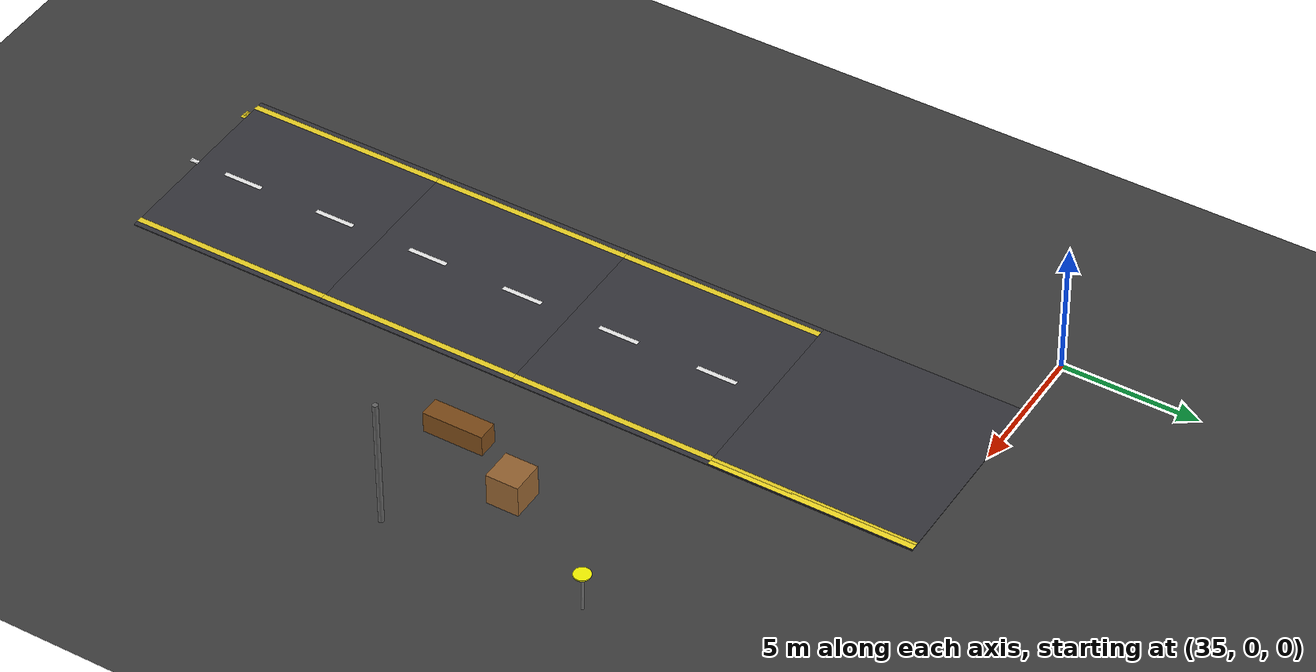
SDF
<sdf version="1.7">
 <world name="compact_city">
  <model name="ground_plane">
   <static>1</static>
   <pose>0 0 0.01 0 -0 0</pose>
   <link name="link">
    <collision name="collision">
     <geometry><plane><normal>0 0 1</normal><size>200 200</size></plane></geometry>
    </collision>
    <visual name="visual">
     <geometry><plane><normal>0 0 1</normal><size>200 200</size></plane></geometry>
     <material>
      <ambient>0.2 0.2 0.2 1</ambient>
      <diffuse>0.25 0.25 0.25 1</diffuse>
      <specular>0.1 0.1 0.1 1</specular>
     </material>
    </visual>
   </link>
  </model>
  <model name="road_tile_55">
   <static>1</static>
   <pose>41.25 -3.75 0.015 0 -0 0</pose>
   <link name="link">
    <collision name="collision"><geometry><box><size>7.5 7.5 0.03</size></box></geometry></collision>
    <visual name="visual">
     <geometry><box><size>7.5 7.5 0.03</size></box></geometry>
     <material>
      <ambient>0.18 0.18 0.2 1</ambient>
      <diffuse>0.22 0.22 0.24 1</diffuse>
      <specular>0.1 0.1 0.1 1</specular>
     </material>
    </visual>
   </link>
  </model>
  <model name="road_tile_59">
   <static>1</static>
   <pose>41.25 -11.25 0.015 0 -0 1.5708</pose>
   <link name="link">
    <collision name="collision"><geometry><box><size>7.5 7.5 0.03</size></box></geometry></collision>
    <visual name="visual">
     <geometry><box><size>7.5 7.5 0.03</size></box></geometry>
     <material>
      <ambient>0.18 0.18 0.2 1</ambient>
      <diffuse>0.22 0.22 0.24 1</diffuse>
      <specular>0.1 0.1 0.1 1</specular>
     </material>
    </visual>
   </link>
  </model>
  <model name="road_tile_63">
   <static>1</static>
   <pose>41.25 -18.75 0.015 0 -0 1.5708</pose>
   <link name="link">
    <collision name="collision"><geometry><box><size>7.5 7.5 0.03</size></box></geometry></collision>
    <visual name="visual">
     <geometry><box><size>7.5 7.5 0.03</size></box></geometry>
     <material>
      <ambient>0.18 0.18 0.2 1</ambient>
      <diffuse>0.22 0.22 0.24 1</diffuse>
      <specular>0.1 0.1 0.1 1</specular>
     </material>
    </visual>
   </link>
  </model>
  <model name="road_tile_67">
   <static>1</static>
   <pose>41.25 -26.25 0.015 0 -0 1.5708</pose>
   <link name="link">
    <collision name="collision"><geometry><box><size>7.5 7.5 0.03</size></box></geometry></collision>
    <visual name="visual">
     <geometry><box><size>7.5 7.5 0.03</size></box></geometry>
     <material>
      <ambient>0.18 0.18 0.2 1</ambient>
      <diffuse>0.22 0.22 0.24 1</diffuse>
      <specular>0.1 0.1 0.1 1</specular>
     </material>
    </visual>
   </link>
  </model>
  <model name="el_245">
   <static>1</static>
   <pose>37.8 -26.25 0.038 0 -0 1.5708</pose>
   <link name="link">
    <visual name="v">
     <geometry><box><size>7.5 0.225 0.002</size></box></geometry>
     <material><ambient>0.9 0.8 0.1 1</ambient><diffuse>0.95 0.85 0.15 1</diffuse></material>
    </visual>
   </link>
  </model>
  <model name="el_246">
   <static>1</static>
   <pose>44.7 -26.25 0.038 0 -0 1.5708</pose>
   <link name="link">
    <visual name="v">
     <geometry><box><size>7.5 0.225 0.002</size></box></geometry>
     <material><ambient>0.9 0.8 0.1 1</ambient><diffuse>0.95 0.85 0.15 1</diffuse></material>
    </visual>
   </link>
  </model>
  <model name="el_247">
   <static>1</static>
   <pose>37.8 -18.75 0.038 0 -0 1.5708</pose>
   <link name="link">
    <visual name="v">
     <geometry><box><size>7.5 0.225 0.002</size></box></geometry>
     <material><ambient>0.9 0.8 0.1 1</ambient><diffuse>0.95 0.85 0.15 1</diffuse></material>
    </visual>
   </link>
  </model>
  <model name="el_248">
   <static>1</static>
   <pose>44.7 -18.75 0.038 0 -0 1.5708</pose>
   <link name="link">
    <visual name="v">
     <geometry><box><size>7.5 0.225 0.002</size></box></geometry>
     <material><ambient>0.9 0.8 0.1 1</ambient><diffuse>0.95 0.85 0.15 1</diffuse></material>
    </visual>
   </link>
  </model>
  <model name="el_249">
   <static>1</static>
   <pose>37.8 -11.25 0.038 0 -0 1.5708</pose>
   <link name="link">
    <visual name="v">
     <geometry><box><size>7.5 0.225 0.002</size></box></geometry>
     <material><ambient>0.9 0.8 0.1 1</ambient><diffuse>0.95 0.85 0.15 1</diffuse></material>
    </visual>
   </link>
  </model>
  <model name="el_250">
   <static>1</static>
   <pose>44.7 -11.25 0.038 0 -0 1.5708</pose>
   <link name="link">
    <visual name="v">
     <geometry><box><size>7.5 0.225 0.002</size></box></geometry>
     <material><ambient>0.9 0.8 0.1 1</ambient><diffuse>0.95 0.85 0.15 1</diffuse></material>
    </visual>
   </link>
  </model>
  <model name="ld_49">
   <static>1</static>
   <pose>41.25 -28.125 0.038 0 -0 1.5708</pose>
   <link name="link">
    <visual name="v">
     <geometry><box><size>1.5 0.18 0.002</size></box></geometry>
     <material><ambient>1 1 1 1</ambient><diffuse>0.95 0.95 0.95 1</diffuse></material>
    </visual>
   </link>
  </model>
  <model name="ld_50">
   <static>1</static>
   <pose>41.25 -24.375 0.038 0 -0 1.5708</pose>
   <link name="link">
    <visual name="v">
     <geometry><box><size>1.5 0.18 0.002</size></box></geometry>
     <material><ambient>1 1 1 1</ambient><diffuse>0.95 0.95 0.95 1</diffuse></material>
    </visual>
   </link>
  </model>
  <model name="ld_51">
   <static>1</static>
   <pose>41.25 -20.625 0.038 0 -0 1.5708</pose>
   <link name="link">
    <visual name="v">
     <geometry><box><size>1.5 0.18 0.002</size></box></geometry>
     <material><ambient>1 1 1 1</ambient><diffuse>0.95 0.95 0.95 1</diffuse></material>
    </visual>
   </link>
  </model>
  <model name="ld_52">
   <static>1</static>
   <pose>41.25 -16.875 0.038 0 -0 1.5708</pose>
   <link name="link">
    <visual name="v">
     <geometry><box><size>1.5 0.18 0.002</size></box></geometry>
     <material><ambient>1 1 1 1</ambient><diffuse>0.95 0.95 0.95 1</diffuse></material>
    </visual>
   </link>
  </model>
  <model name="ld_53">
   <static>1</static>
   <pose>41.25 -13.125 0.038 0 -0 1.5708</pose>
   <link name="link">
    <visual name="v">
     <geometry><box><size>1.5 0.18 0.002</size></box></geometry>
     <material><ambient>1 1 1 1</ambient><diffuse>0.95 0.95 0.95 1</diffuse></material>
    </visual>
   </link>
  </model>
  <model name="ld_54">
   <static>1</static>
   <pose>41.25 -9.375 0.038 0 -0 1.5708</pose>
   <link name="link">
    <visual name="v">
     <geometry><box><size>1.5 0.18 0.002</size></box></geometry>
     <material><ambient>1 1 1 1</ambient><diffuse>0.95 0.95 0.95 1</diffuse></material>
    </visual>
   </link>
  </model>
  <model name="ie_344">
   <static>1</static>
   <pose>44.7 -3.75 0.038 0 -0 1.5708</pose>
   <link name="link">
    <visual name="v">
     <geometry><box><size>7.5 0.15 0.002</size></box></geometry>
     <material><ambient>0.9 0.8 0.1 1</ambient><diffuse>0.95 0.85 0.15 1</diffuse></material>
    </visual>
   </link>
  </model>
  <model name="ac_593">
   <static>1</static>
   <pose>41.248 -30.1227 0.038 0 -0 1.53811</pose>
   <link name="link">
    <visual name="v">
     <geometry><box><size>0.260117 0.18 0.002</size></box></geometry>
     <material><ambient>1 1 1 1</ambient><diffuse>0.95 0.95 0.95 1</diffuse></material>
    </visual>
   </link>
  </model>
  <model name="ai_615">
   <static>1</static>
   <pose>38.24 -30.1221 0.038 0 -0 1.40722</pose>
   <link name="link">
    <visual name="v">
     <geometry><box><size>0.06 0.225 0.002</size></box></geometry>
     <material><ambient>0.9 0.8 0.1 1</ambient><diffuse>0.95 0.85 0.15 1</diffuse></material>
    </visual>
   </link>
  </model>
  <model name="ai_616">
   <static>1</static>
   <pose>38.2464 -30.0735 0.038 0 -0 1.47262</pose>
   <link name="link">
    <visual name="v">
     <geometry><box><size>0.06 0.225 0.002</size></box></geometry>
     <material><ambient>0.9 0.8 0.1 1</ambient><diffuse>0.95 0.85 0.15 1</diffuse></material>
    </visual>
   </link>
  </model>
  <model name="ai_617">
   <static>1</static>
   <pose>38.2495 -30.0246 0.038 0 -0 1.53811</pose>
   <link name="link">
    <visual name="v">
     <geometry><box><size>0.06 0.225 0.002</size></box></geometry>
     <material><ambient>0.9 0.8 0.1 1</ambient><diffuse>0.95 0.85 0.15 1</diffuse></material>
    </visual>
   </link>
  </model>
  <model name="bench_11">
   <static>1</static>
   <pose>48 -15 0.4 0 0 -1.57</pose>
   <link name="link">
    <collision name="collision"><geometry><box><size>2.25 0.75 0.8</size></box></geometry></collision>
    <visual name="visual">
     <geometry><box><size>2.25 0.75 0.8</size></box></geometry>
     <material><ambient>0.5 0.3 0.1 1</ambient><diffuse>0.5 0.3 0.1 1</diffuse></material>
    </visual>
   </link>
  </model>
  <model name="sign_8">
   <static>1</static>
   <pose>52.5 -7.5 1.5 0 0 -1.57</pose>
   <link name="link">
    <collision name="collision">
     <geometry><cylinder><radius>0.3</radius><length>0.05</length></cylinder></geometry>
    </collision>
    <visual name="visual">
     <geometry><cylinder><radius>0.3</radius><length>0.05</length></cylinder></geometry>
     <material><ambient>1 1 0 1</ambient><diffuse>1 1 0 1</diffuse></material>
    </visual>
    <collision name="pole_col">
     <pose>0 0 -0.75 0 -0 0</pose>
     <geometry><cylinder><radius>0.05</radius><length>1.5</length></cylinder></geometry>
    </collision>
    <visual name="pole">
     <pose>0 0 -0.75 0 -0 0</pose>
     <geometry><cylinder><radius>0.05</radius><length>1.5</length></cylinder></geometry>
     <material><ambient>0.5 0.5 0.5 1</ambient><diffuse>0.5 0.5 0.5 1</diffuse></material>
    </visual>
   </link>
  </model>
  <model name="pole_10">
   <static>1</static>
   <pose>52.5 -15 2.5 0 -0 0</pose>
   <link name="link">
    <collision name="collision">
     <geometry><cylinder><radius>0.1</radius><length>5</length></cylinder></geometry>
    </collision>
    <visual name="visual">
     <geometry><cylinder><radius>0.1</radius><length>5</length></cylinder></geometry>
     <material><ambient>0.3 0.3 0.3 1</ambient><diffuse>0.4 0.4 0.4 1</diffuse></material>
    </visual>
   </link>
  </model>
  <model name="box_8">
   <static>1</static>
   <pose>49.5 -12 0.6 0 -0 0</pose>
   <link name="link">
    <collision name="collision"><geometry><box><size>1.2 1.2 1.2</size></box></geometry></collision>
    <visual name="visual">
     <geometry><box><size>1.2 1.2 1.2</size></box></geometry>
     <material><ambient>0.6 0.4 0.2 1</ambient><diffuse>0.6 0.4 0.2 1</diffuse></material>
    </visual>
   </link>
  </model>
  <model name="arc_c_408">
   <static>1</static>
   <pose>41.2441 -30.1471 0.038 0 -0 1.5315</pose>
   <link name="link">
    <visual name="visual">
     <geometry><box><size>0.324449 0.18 0.002</size></box></geometry>
     <material><ambient>1 1 1 1</ambient><diffuse>0.95 0.95 0.95 1</diffuse></material>
    </visual>
   </link>
  </model>
  <model name="arc_in_427">
   <static>1</static>
   <pose>38.3931 -30.1058 0.038 0 -0 1.453</pose>
   <link name="link">
    <visual name="visual">
     <geometry><box><size>0.100668 0.225 0.002</size></box></geometry>
     <material><ambient>0.95 0.85 0.1 1</ambient><diffuse>1 0.9 0.15 1</diffuse></material>
    </visual>
   </link>
  </model>
  <model name="arc_in_428">
   <static>1</static>
   <pose>38.3987 -30.0353 0.038 0 -0 1.5315</pose>
   <link name="link">
    <visual name="visual">
     <geometry><box><size>0.100668 0.225 0.002</size></box></geometry>
     <material><ambient>0.95 0.85 0.1 1</ambient><diffuse>1 0.9 0.15 1</diffuse></material>
    </visual>
   </link>
  </model>
  <model name="tedge_500">
   <static>1</static>
   <pose>44.85 -3.75 0.038 0 -0 1.5708</pose>
   <link name="link">
    <visual name="visual">
     <geometry><box><size>7.5 0.225 0.002</size></box></geometry>
     <material><ambient>0.95 0.85 0.1 1</ambient><diffuse>1 0.9 0.15 1</diffuse></material>
    </visual>
   </link>
  </model>
 </world>
</sdf>
